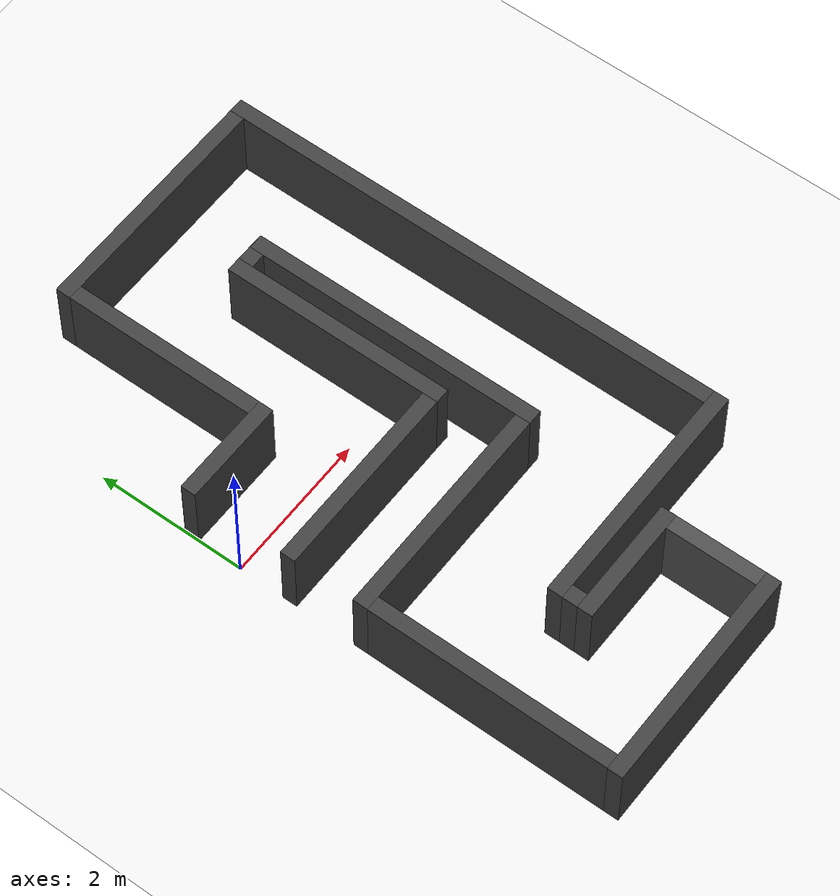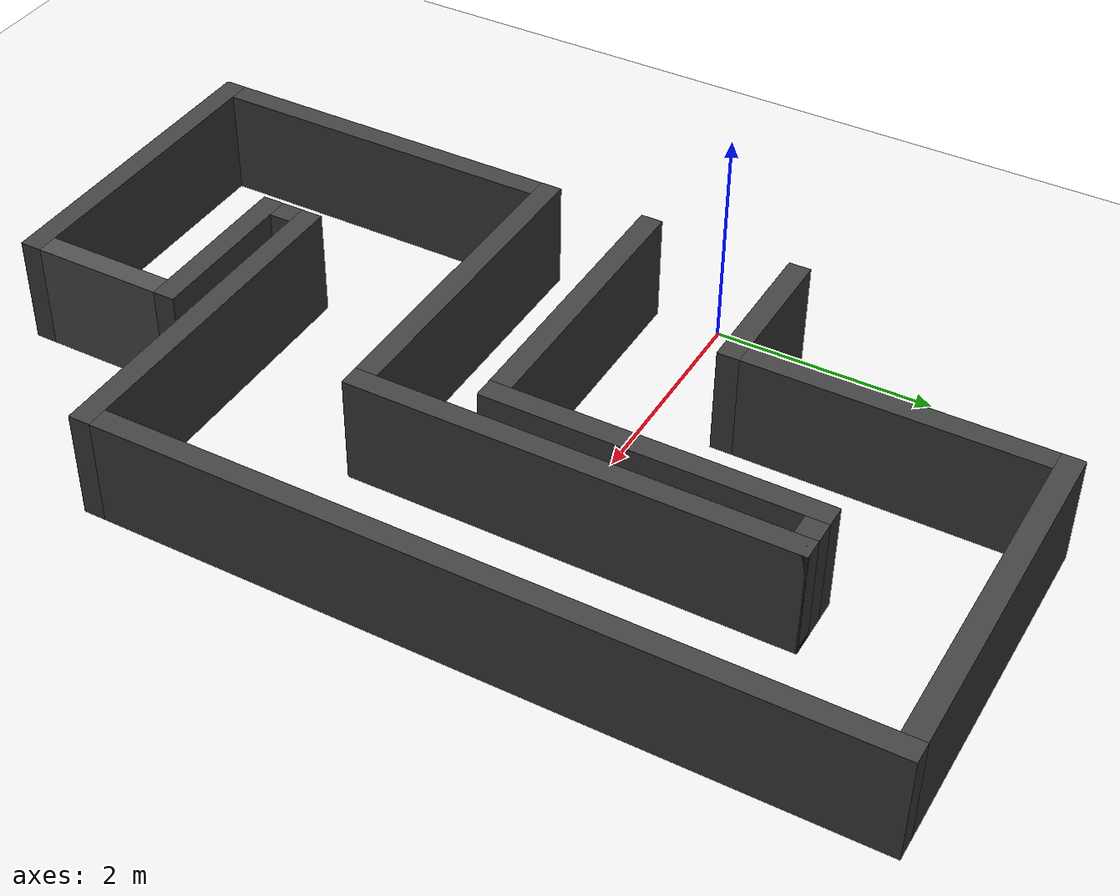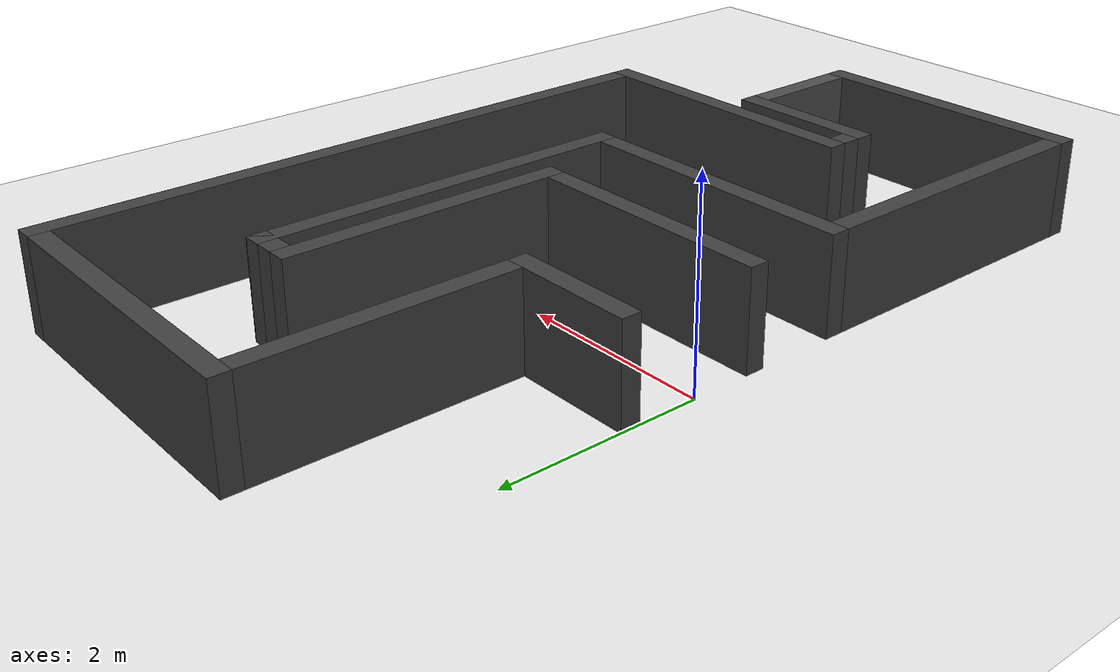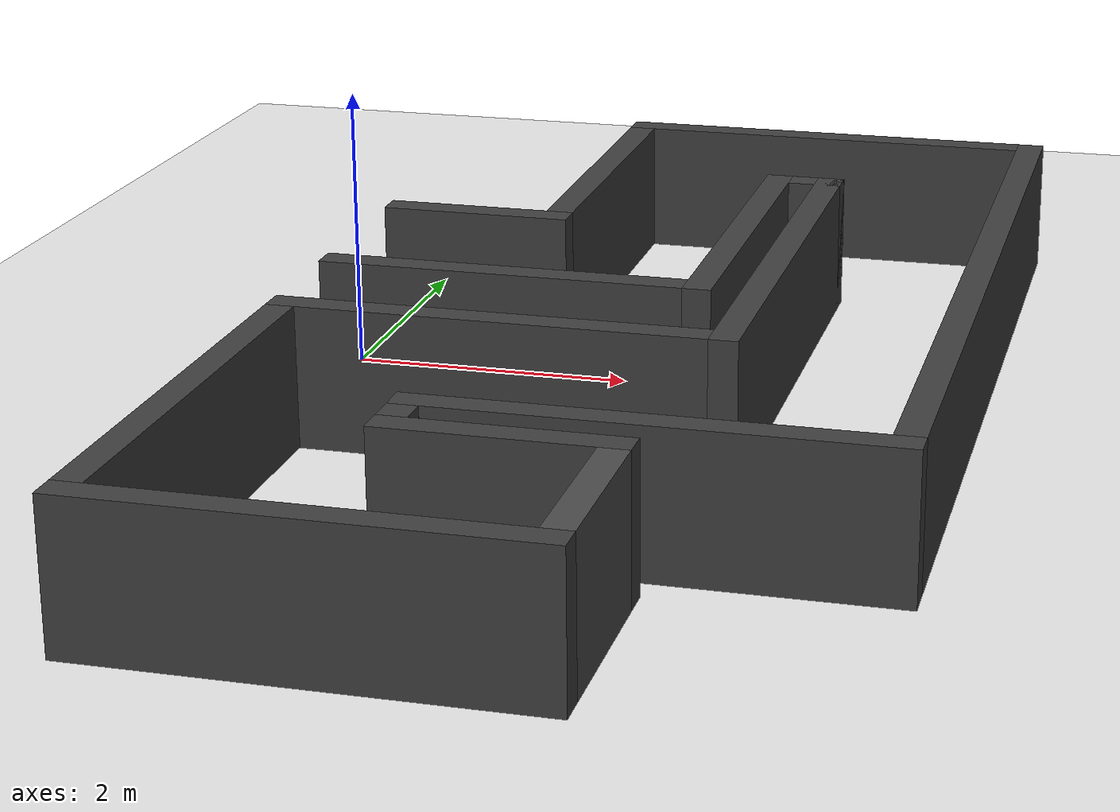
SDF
<?xml version="1.0"?>
<sdf version="1.7">
  <world name="bci_seq_maze_v2">

    <plugin filename="gz-sim-physics-system" name="gz::sim::systems::Physics"/>
    <plugin filename="gz-sim-user-commands-system" name="gz::sim::systems::UserCommands"/>
    <plugin filename="gz-sim-scene-broadcaster-system" name="gz::sim::systems::SceneBroadcaster"/>
    <plugin filename="gz-sim-sensors-system" name="gz::sim::systems::Sensors">
      <render_engine>ogre2</render_engine>
    </plugin>

    <gravity>0 0 -9.8</gravity>

    <!-- 밝기 -->
    <scene>
      <ambient>0.40 0.40 0.40 1</ambient>
      <background>0.85 0.85 0.85 1</background>
      <shadows>true</shadows>
    </scene>

    <light name="sun" type="directional">
      <cast_shadows>true</cast_shadows>
      <pose>0 0 15 0 0 0</pose>
      <diffuse>0.80 0.80 0.80 1</diffuse>
      <specular>0.12 0.12 0.12 1</specular>
      <direction>-0.5 0.1 -1</direction>
    </light>

    <light name="fill_light" type="point">
      <pose>8 0 8 0 0 0</pose>
      <diffuse>0.35 0.35 0.35 1</diffuse>
      <specular>0.05 0.05 0.05 1</specular>
      <attenuation>
        <range>80</range>
        <constant>0.9</constant>
        <linear>0.02</linear>
        <quadratic>0.002</quadratic>
      </attenuation>
    </light>

    <!--  격자 지면 -->
    <model name="ground_plane">
      <static>true</static>
      <link name="link">
        <collision name="collision">
          <geometry>
            <plane><normal>0 0 1</normal><size>300 300</size></plane>
          </geometry>
        </collision>
        <visual name="visual">
          <geometry>
            <plane><normal>0 0 1</normal><size>300 300</size></plane>
          </geometry>
          <material>
            <ambient>0.92 0.92 0.92 1</ambient>
            <diffuse>0.92 0.92 0.92 1</diffuse>
            <specular>0.02 0.02 0.02 1</specular>
          </material>
        </visual>
      </link>
    </model>

    <!-- wall material (repeat per visual) -->
    <!-- use dark gray instead of pure black -->
    <!-- NOTE: each wall is an independent static model -->

    <!-- ===== Segment S1 ===== -->
    <model name="s1_left">
      <static>true</static><pose>0.7 0.7 0.5 0 0 0</pose>
      <link name="l">
        <collision name="c"><geometry><box><size>1.4 0.2 1.0</size></box></geometry></collision>
        <visual name="v">
          <geometry><box><size>1.4 0.2 1.0</size></box></geometry>
          <material><ambient>0.25 0.25 0.25 1</ambient><diffuse>0.25 0.25 0.25 1</diffuse></material>
        </visual>
      </link>
    </model>
    <model name="s1_right">
      <static>true</static><pose>1.3 -0.7 0.5 0 0 0</pose>
      <link name="l">
        <collision name="c"><geometry><box><size>2.6 0.2 1.0</size></box></geometry></collision>
        <visual name="v">
          <geometry><box><size>2.6 0.2 1.0</size></box></geometry>
          <material><ambient>0.25 0.25 0.25 1</ambient><diffuse>0.25 0.25 0.25 1</diffuse></material>
        </visual>
      </link>
    </model>

    <!-- ===== Segment S2 ===== -->
    <model name="s2_top">
      <static>true</static><pose>2.7 0.7 0.5 0 0 0</pose>
      <link name="l">
        <collision name="c"><geometry><box><size>0.2 3.0 1.0</size></box></geometry></collision>
        <visual name="v">
          <geometry><box><size>0.2 3.0 1.0</size></box></geometry>
          <material><ambient>0.25 0.25 0.25 1</ambient><diffuse>0.25 0.25 0.25 1</diffuse></material>
        </visual>
      </link>
    </model>
    <model name="s2_bot">
      <static>true</static><pose>1.3 2.1 0.5 0 0 0</pose>
      <link name="l">
        <collision name="c"><geometry><box><size>0.2 2.6 1.0</size></box></geometry></collision>
        <visual name="v">
          <geometry><box><size>0.2 2.6 1.0</size></box></geometry>
          <material><ambient>0.25 0.25 0.25 1</ambient><diffuse>0.25 0.25 0.25 1</diffuse></material>
        </visual>
      </link>
    </model>

    <!-- ===== Segment S3 ===== -->
    <model name="s3_left">
      <static>true</static><pose>2.8 3.5 0.5 0 0 0</pose>
      <link name="l">
        <collision name="c"><geometry><box><size>3.2 0.2 1.0</size></box></geometry></collision>
        <visual name="v">
          <geometry><box><size>3.2 0.2 1.0</size></box></geometry>
          <material><ambient>0.25 0.25 0.25 1</ambient><diffuse>0.25 0.25 0.25 1</diffuse></material>
        </visual>
      </link>
    </model>
    <model name="s3_right">
      <static>true</static><pose>3.0 2.1 0.5 0 0 0</pose>
      <link name="l">
        <collision name="c"><geometry><box><size>0.4 0.2 1.0</size></box></geometry></collision>
        <visual name="v">
          <geometry><box><size>0.4 0.2 1.0</size></box></geometry>
          <material><ambient>0.25 0.25 0.25 1</ambient><diffuse>0.25 0.25 0.25 1</diffuse></material>
        </visual>
      </link>
    </model>

    <!-- ===== Segment S4 ===== -->
    <model name="s4_top">
      <static>true</static><pose>4.5 0.2 0.5 0 0 0</pose>
      <link name="l">
        <collision name="c"><geometry><box><size>0.2 6.8 1.0</size></box></geometry></collision>
        <visual name="v">
          <geometry><box><size>0.2 6.8 1.0</size></box></geometry>
          <material><ambient>0.25 0.25 0.25 1</ambient><diffuse>0.25 0.25 0.25 1</diffuse></material>
        </visual>
      </link>
    </model>
    <model name="s4_bot">
      <static>true</static><pose>3.1 0.2 0.5 0 0 0</pose>
      <link name="l">
        <collision name="c"><geometry><box><size>0.2 4.0 1.0</size></box></geometry></collision>
        <visual name="v">
          <geometry><box><size>0.2 4.0 1.0</size></box></geometry>
          <material><ambient>0.25 0.25 0.25 1</ambient><diffuse>0.25 0.25 0.25 1</diffuse></material>
        </visual>
      </link>
    </model>

    <!-- ===== Segment S5 ===== -->
    <model name="s5_left">
      <static>true</static><pose>1.5 -1.7 0.5 0 0 0</pose>
      <link name="l">
        <collision name="c"><geometry><box><size>3.0 0.2 1.0</size></box></geometry></collision>
        <visual name="v">
          <geometry><box><size>3.0 0.2 1.0</size></box></geometry>
          <material><ambient>0.25 0.25 0.25 1</ambient><diffuse>0.25 0.25 0.25 1</diffuse></material>
        </visual>
      </link>
    </model>
    <model name="s5_right">
      <static>true</static><pose>3.0 -3.3 0.5 0 0 0</pose>
      <link name="l">
        <collision name="c"><geometry><box><size>3.2 0.2 1.0</size></box></geometry></collision>
        <visual name="v">
          <geometry><box><size>3.2 0.2 1.0</size></box></geometry>
          <material><ambient>0.25 0.25 0.25 1</ambient><diffuse>0.25 0.25 0.25 1</diffuse></material>
        </visual>
      </link>
    </model>

    <!-- ===== Segment S6 ===== -->
    <model name="s6_top">
      <static>true</static><pose>1.5 -3.5 0.5 0 0 0</pose>
      <link name="l">
        <collision name="c"><geometry><box><size>0.2 0.2 1.0</size></box></geometry></collision>
        <visual name="v">
          <geometry><box><size>0.2 0.2 1.0</size></box></geometry>
          <material><ambient>0.25 0.25 0.25 1</ambient><diffuse>0.25 0.25 0.25 1</diffuse></material>
        </visual>
      </link>
    </model>
    <model name="s6_bot">
      <static>true</static><pose>0.1 -3.4 0.5 0 0 0</pose>
      <link name="l">
        <collision name="c"><geometry><box><size>0.2 3.2 1.0</size></box></geometry></collision>
        <visual name="v">
          <geometry><box><size>0.2 3.2 1.0</size></box></geometry>
          <material><ambient>0.25 0.25 0.25 1</ambient><diffuse>0.25 0.25 0.25 1</diffuse></material>
        </visual>
      </link>
    </model>

    <!-- ===== Segment S7 ===== -->
    <model name="s7_left">
      <static>true</static><pose>2.2 -3.7 0.5 0 0 0</pose>
      <link name="l">
        <collision name="c"><geometry><box><size>1.6 0.2 1.0</size></box></geometry></collision>
        <visual name="v">
          <geometry><box><size>1.6 0.2 1.0</size></box></geometry>
          <material><ambient>0.25 0.25 0.25 1</ambient><diffuse>0.25 0.25 0.25 1</diffuse></material>
        </visual>
      </link>
    </model>
    <model name="s7_right">
      <static>true</static><pose>1.5 -5.1 0.5 0 0 0</pose>
      <link name="l">
        <collision name="c"><geometry><box><size>3.0 0.2 1.0</size></box></geometry></collision>
        <visual name="v">
          <geometry><box><size>3.0 0.2 1.0</size></box></geometry>
          <material><ambient>0.25 0.25 0.25 1</ambient><diffuse>0.25 0.25 0.25 1</diffuse></material>
        </visual>
      </link>
    </model>

    <!-- STOP pocket wall (정면에서 LiDAR로 확인 + 충돌 방지) -->
    <model name="stop_wall">
      <static>true</static><pose>2.9 -4.4 0.5 0 0 0</pose>
      <link name="l">
        <collision name="c"><geometry><box><size>0.2 1.2 1.0</size></box></geometry></collision>
        <visual name="v">
          <geometry><box><size>0.2 1.2 1.0</size></box></geometry>
          <material><ambient>0.30 0.30 0.30 1</ambient><diffuse>0.30 0.30 0.30 1</diffuse></material>
        </visual>
      </link>
    </model>

  </world>
</sdf>
